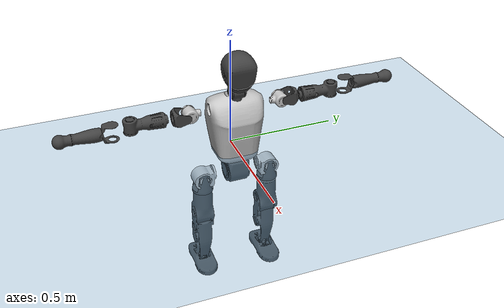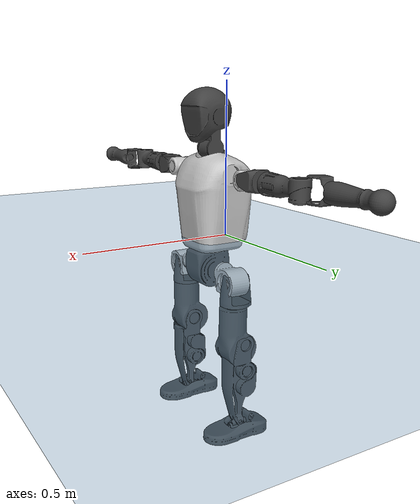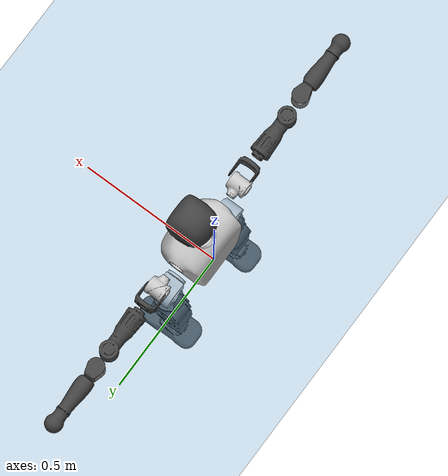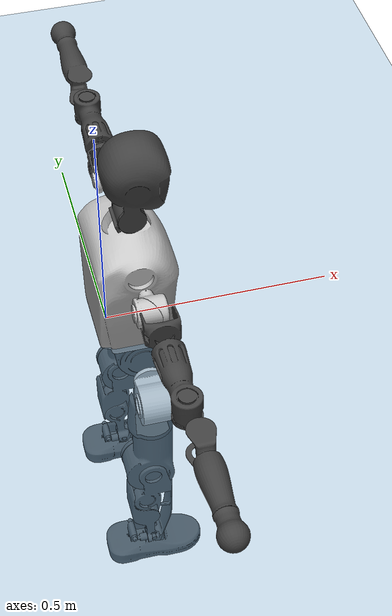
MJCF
<mujoco model="T1">
  <compiler angle="radian" assetdir="assets" balanceinertia="true" inertiafromgeom="false"/>

  <option timestep="0.005" density="1.2" viscosity="2e-05"/>

  <size nkey="1"/>

  <visual>
    <quality shadowsize="8192"/>
    <map shadowclip="0.5"/>
  </visual>

  <default>
    <default class="/">
      <joint armature="0.01" damping="0.01" frictionloss="0.1"/>
      <geom contype="0" conaffinity="0" group="1" solref="-1000 -80"/>
      <site size="0.01 0.005 0.005" group="5"/>
      <general forcelimited="true" biastype="affine" gainprm="25" biasprm="0 -25 -0.6"/>
      <default class="t1">
        <geom rgba="0.25 0.25 0.25 1"/>
        <default class="visual">
          <geom type="mesh" group="2"/>
        </default>
        <default class="collision">
          <geom group="3"/>
        </default>
        <default class="foot">
          <geom size="0.1115 0.05 0.015" type="box" condim="6" group="4" priority="1" solimp="0.015 1 0.015"/>
        </default>
        <default class="reward_collision_sphere">
          <geom group="5" rgba="1 0 0 1"/>
        </default>
      </default>
    </default>
  </default>

  <asset>
    <texture type="skybox" colorspace="auto" name="//unnamed_texture_0" builtin="gradient" rgb1="0.95 0.95 0.95" rgb2="0.95 0.95 0.95" width="100" height="600"/>
    <texture type="2d" colorspace="auto" name="texplane" builtin="checker" rgb1="0.345 0.575 0.748" rgb2="0.345 0.575 0.748" markrgb="1 1 1" width="512" height="512"/>
    <material name="MatPlane" class="/" texture="texplane" texuniform="true" texrepeat="2 2" specular="0.9"/>
    <mesh name="Trunk" class="/" file="Trunk.stl"/>
    <mesh name="H1" class="/" file="H1.stl"/>
    <mesh name="H2" class="/" file="H2.stl"/>
    <mesh name="AL1" class="/" file="AL1.stl"/>
    <mesh name="AL2" class="/" file="AL2.stl"/>
    <mesh name="AL3" class="/" file="AL3.stl"/>
    <mesh name="left_hand_link" class="/" file="left_hand_link.stl"/>
    <mesh name="AR1" class="/" file="AR1.stl"/>
    <mesh name="AR2" class="/" file="AR2.stl"/>
    <mesh name="AR3" class="/" file="AR3.stl"/>
    <mesh name="right_hand_link" class="/" file="right_hand_link.stl"/>
    <mesh name="Waist" class="/" file="Waist.stl"/>
    <mesh name="Hip_Pitch_Left" class="/" file="Hip_Pitch_Left.stl"/>
    <mesh name="Hip_Roll_Left" class="/" file="Hip_Roll_Left.stl"/>
    <mesh name="Hip_Yaw_Left" class="/" file="Hip_Yaw_Left.stl"/>
    <mesh name="Shank_Left" class="/" file="Shank_Left.stl"/>
    <mesh name="Ankle_Cross_Left" class="/" file="Ankle_Cross_Left.stl"/>
    <mesh name="left_foot_link" class="/" file="left_foot_link.stl"/>
    <mesh name="Hip_Pitch_Right" class="/" file="Hip_Pitch_Right.stl"/>
    <mesh name="Hip_Roll_Right" class="/" file="Hip_Roll_Right.stl"/>
    <mesh name="Hip_Yaw_Right" class="/" file="Hip_Yaw_Right.stl"/>
    <mesh name="Shank_Right" class="/" file="Shank_Right.stl"/>
    <mesh name="Ankle_Cross_Right" class="/" file="Ankle_Cross_Right.stl"/>
    <mesh name="right_foot_link" class="/" file="right_foot_link.stl"/>
  </asset>

  <worldbody>
    <geom name="floor" class="/" size="100 100 0.125" type="plane" group="0" material="MatPlane"/>
    <light name="toplight_shadow" class="/" pos="0 0 5" dir="0.0990148 0.0990148 -0.990148" type="directional" ambient="0.04 0.04 0.04" diffuse="0.55 0.55 0.55" specular="0.12 0.12 0.12"/>
    <light name="toplight_fill" class="/" pos="0 0 5" dir="0.0990148 0.0990148 -0.990148" type="directional" castshadow="false" ambient="0.04 0.04 0.04" diffuse="0.3 0.3 0.3" specular="0.08 0.08 0.08"/>
    <body name="trunk" childclass="t1" pos="-0.000592748 0.000686387 0.00028015" quat="1 0.000552884 -0.000562889 -8.42008e-05">
      <inertial pos="0.0529415 -0.00940057 0.0933893" quat="0.999713 -0.00854581 -0.0145315 -0.0170119" mass="19.2926" diaginertia="0.109456 0.61312 0.0454124"/>
      <joint name="//unnamed_joint_0" type="free" armature="0" damping="0" frictionloss="0"/>
      <geom name="//unnamed_geom_1" class="visual" rgba="0.76 0.76 0.76 1" mesh="Trunk"/>
      <geom name="//unnamed_geom_2" class="collision" size="0.0874133 0.116551 0.174827" pos="0.0618941 0 0.114856" type="box"/>
      <geom name="//unnamed_geom_3" class="reward_collision_sphere" size="0.134034" pos="0.0618941 0 0.095713"/>
      <geom name="//unnamed_geom_4" class="reward_collision_sphere" size="0.0174827" pos="0.0618941 0.128166 0"/>
      <geom name="//unnamed_geom_5" class="reward_collision_sphere" size="0.0174827" pos="0.0618941 -0.128166 0"/>
      <geom name="//unnamed_geom_6" class="reward_collision_sphere" size="0.0174827" pos="0.0618941 0.161338 0.172283"/>
      <geom name="//unnamed_geom_7" class="reward_collision_sphere" size="0.0174827" pos="0.0618941 -0.161338 0.172283"/>
      <site name="imu" pos="0.0146496 0.00961358 0.00280455" size="0.0116551"/>
      <camera name="track" pos="0 -3.01566 0" quat="0.707107 0.707107 0 0" mode="trackcom"/>
      <camera name="ego_camera" pos="0.125851 0 0.401995" quat="-0.5 -0.5 0.5 0.5"/>
      <body name="H1" pos="0.0645683 0.0064214 0.225384" quat="1 0.000387159 0.000220003 -0.000150848">
        <inertial pos="-0.00231331 -0.0116038 0.0536094" quat="0.760012 -0.0468062 0.00783814 0.648174" mass="0.729771" diaginertia="0.000296516 0.00180765 0.000117465"/>
        <joint name="AAHead_yaw" pos="0 0 0" axis="0.00484827 -0.00264206 0.999985" range="-1.57345 1.72064" armature="0.0101221" damping="0" frictionloss="0.174345"/>
        <geom name="//unnamed_geom_8" class="visual" mesh="H1"/>
        <body name="H2" pos="0.000239314 0.000437459 0.0653091" quat="0.999999 -0.000958353 -0.000231835 -0.000224527">
          <inertial pos="0.00767575 0.00958109 0.0949098" quat="0.982959 0.114412 -0.0872041 -0.114442" mass="1.01726" diaginertia="0.0023761 0.015238 0.00132897"/>
          <joint name="Head_pitch" pos="0 0 0" axis="0.0034255 -0.999993 -0.00160579" range="-1.26208 0.354222" armature="0.0114959" damping="0" frictionloss="0.139026"/>
          <geom name="//unnamed_geom_9" class="visual" mesh="H2"/>
          <geom name="//unnamed_geom_10" class="collision" size="0.0932408" pos="0.0103157 0 0.105284"/>
          <geom name="//unnamed_geom_11" class="reward_collision_sphere" size="0.104896" pos="0.0206314 0 0.095713"/>
        </body>
      </body>
      <body name="AL1" pos="0.0637486 0.164262 0.212263" quat="0.999993 0.0019192 -0.000119561 -0.00308721">
        <inertial pos="-0.00124974 0.0694829 0.000994881" quat="0.504041 0.478226 -0.536218 0.479283" mass="0.822118" diaginertia="0.00159064 0.00913463 0.000241795"/>
        <joint name="Left_Shoulder_Pitch" pos="0 0 0" axis="-0.00171389 0.999997 -0.00144357" range="-3.28156 1.09331" armature="0.0119959" damping="0.0059804" frictionloss="0.120171"/>
        <geom name="//unnamed_geom_12" class="visual" rgba="0.76 0.76 0.76 1" mesh="AL1"/>
        <body name="AL2" pos="0.000401657 0.0647847 0.00422021" quat="0.999998 0.0011541 0.000230634 0.00182012">
          <inertial pos="-0.00370794 0.0480578 -0.00277536" quat="0.447459 0.525983 -0.489167 0.532764" mass="0.254239" diaginertia="0.000490042 0.00276796 0.000131832"/>
          <joint name="Left_Shoulder_Roll" pos="0 0 0" axis="-0.999983 0.00297357 0.00499451" range="-1.58471 1.7345" armature="0.0125034" damping="0.00496873" frictionloss="0.110121"/>
          <geom name="//unnamed_geom_13" class="visual" mesh="AL2"/>
          <body name="AL3" pos="0.00150431 0.0815774 -0.00226542" quat="1 -0.000141686 -0.00035889 0.000138879">
            <inertial pos="0.00821061 0.13072 0.00311434" quat="0.698949 0.714969 -0.0158402 0.00626282" mass="1.39837" diaginertia="0.0138283 0.0936929 0.000462547"/>
            <joint name="Left_Elbow_Pitch" pos="0 0 0" axis="-0.0094681 -0.999951 0.00297489" range="-2.24556 2.111" armature="0.0103534" damping="0" frictionloss="0.10772"/>
            <geom name="//unnamed_geom_14" class="visual" mesh="AL3"/>
            <geom name="//unnamed_geom_15" class="collision" size="0.0349653 0.0874133" pos="0 0.0753916 0" quat="0.707105 0.707108 0 0" type="cylinder"/>
            <geom name="//unnamed_geom_16" class="reward_collision_sphere" size="0.0419584"/>
            <body name="left_hand_link" pos="-0.00169087 0.21401 0.00876734" quat="1 -0.000398649 -0.000192329 -0.000673758">
              <inertial pos="0.00135213 0.163204 0.00275385" quat="0.708518 0.705692 -0.000722465 0.000106835" mass="0.528774" diaginertia="0.0102583 0.062083 0.000169013"/>
              <joint name="Left_Elbow_Yaw" pos="0 0 0" axis="-8.12457e-05 0.00291834 0.999996" range="-2.28489 -0.0299947" armature="0.0112442" damping="0.0550779" frictionloss="0.0839218"/>
              <geom name="//unnamed_geom_17" class="visual" mesh="left_hand_link"/>
              <geom name="//unnamed_geom_18" class="collision" size="0.0349653 0.101982" pos="0 0.196018 0" quat="0.707105 0.707108 0 0" type="cylinder"/>
              <geom name="//unnamed_geom_19" class="reward_collision_sphere" size="0.0582755"/>
              <geom name="//unnamed_geom_20" class="reward_collision_sphere" size="0.0407929" pos="0 0.165862 0"/>
              <geom name="//unnamed_geom_21" class="reward_collision_sphere" size="0.0407929" pos="0 0.324184 0"/>
            </body>
          </body>
        </body>
      </body>
      <body name="AR1" pos="0.0579805 -0.159903 0.213767" quat="0.999998 -0.00159534 0.00130713 -0.000342947">
        <inertial pos="0.00259376 -0.067133 0.00806282" quat="0.524442 0.462904 -0.513419 0.497073" mass="0.760769" diaginertia="0.00158605 0.00970289 0.000219266"/>
        <joint name="Right_Shoulder_Pitch" pos="0 0 0" axis="-0.0116588 -0.999922 0.00454888" range="-1.23227 3.28249" armature="0.0123883" damping="0.043406" frictionloss="0.166482"/>
        <geom name="//unnamed_geom_22" class="visual" rgba="0.76 0.76 0.76 1" mesh="AR1"/>
        <body name="AR2" pos="0.00811518 -0.0709973 0.00099831" quat="1 0.000114703 0.00029705 -0.000214527">
          <inertial pos="0.00695005 -0.0477956 0.00189947" quat="0.50491 0.46245 -0.512968 0.517755" mass="0.258084" diaginertia="0.000447134 0.00273372 0.000134494"/>
          <joint name="Right_Shoulder_Roll" pos="0 0 0" axis="-0.999758 -0.000917879 -0.021975" range="-1.75399 1.54676" armature="0.0120449" damping="0.0544008" frictionloss="0.119666"/>
          <geom name="//unnamed_geom_23" class="visual" mesh="AR2"/>
          <body name="AR3" pos="-0.00116042 -0.0912843 0.00107831" quat="0.999999 0.000858052 1.01449e-05 0.00149142">
            <inertial pos="0.000108272 -0.130356 -0.000656291" quat="0.713832 0.700114 -0.00452498 0.0162373" mass="1.53986" diaginertia="0.0144476 0.10661 0.000481818"/>
            <joint name="Right_Elbow_Pitch" pos="0 0 0" axis="0.000767839 0.999996 0.00261303" range="-2.3064 2.2655" armature="0.0120182" damping="2.50896e-05" frictionloss="0.123951"/>
            <geom name="//unnamed_geom_24" class="visual" mesh="AR3"/>
            <geom name="//unnamed_geom_25" class="collision" size="0.0349653 0.0874133" pos="0 -0.0753916 0" quat="0.707105 0.707108 0 0" type="cylinder"/>
            <geom name="//unnamed_geom_26" class="reward_collision_sphere" size="0.0419584"/>
            <body name="right_hand_link" pos="0.00531085 -0.226094 -0.00908833" quat="0.999998 -0.00144161 0.000369474 0.00129683">
              <inertial pos="0.0021559 -0.169582 -0.000288389" quat="0.709492 0.704709 -0.00192905 0.00162334" mass="0.498483" diaginertia="0.00932971 0.061949 0.000170635"/>
              <joint name="Right_Elbow_Yaw" pos="0 0 0" axis="-0.00108688 -0.00435864 0.99999" stiffness="0.0032721" range="-0.0789204 2.40766" armature="0.0104947" damping="0.0221536" frictionloss="0.0690141"/>
              <geom name="//unnamed_geom_27" class="visual" mesh="right_hand_link"/>
              <geom name="//unnamed_geom_28" class="collision" size="0.0349653 0.101982" pos="0 -0.196018 0" quat="0.707105 0.707108 0 0" type="cylinder"/>
              <geom name="//unnamed_geom_29" class="reward_collision_sphere" size="0.0582755"/>
              <geom name="//unnamed_geom_30" class="reward_collision_sphere" size="0.0407929" pos="0 -0.165862 0"/>
              <geom name="//unnamed_geom_31" class="reward_collision_sphere" size="0.0407929" pos="0 -0.324184 0"/>
            </body>
          </body>
        </body>
      </body>
      <body name="Waist" pos="0.0698406 -0.00267004 -0.102124" quat="1 0.000188548 5.18145e-05 3.68158e-05">
        <inertial pos="0.0126049 0.000922399 0.00881312" quat="0.982813 0.0080693 -0.184299 0.00686592" mass="4.51229" diaginertia="0.00726251 0.0418375 0.00392904"/>
        <joint name="Waist" pos="0 0 0" axis="0.000504732 -0.000681304 1" range="-1.5136 1.58764" armature="0.00928437" damping="0" frictionloss="0.112856"/>
        <geom name="//unnamed_geom_32" class="visual" mesh="Waist"/>
        <body name="Hip_Pitch_Left" pos="0.00249793 0.156802 0.00663252" quat="1 2.27612e-05 -0.000934464 -0.000200016">
          <inertial pos="0.00103291 -0.0167272 -0.0217497" quat="0.973167 0.229695 0.00771903 0.0112393" mass="1.46726" diaginertia="0.00212445 0.0109108 0.00102342"/>
          <joint name="Left_Hip_Pitch" pos="0 0 0" axis="0.00265362 0.999996 0.000570905" range="-1.79311 1.41165" armature="0.00655514" damping="0" frictionloss="0.113295"/>
          <geom name="//unnamed_geom_33" class="visual" rgba="0.76 0.76 0.76 1" mesh="Hip_Pitch_Left"/>
          <body name="Hip_Roll_Left" pos="-0.00774731 0.00188268 -0.0164356" quat="0.999999 0.00103239 -0.000265979 0.00124627">
            <inertial pos="0.00347377 0.000283093 -0.0533079" quat="0.70468 -0.0319099 0.0289373 0.708217" mass="0.669773" diaginertia="0.00217271 0.0113831 0.000410663"/>
            <joint name="Left_Hip_Roll" pos="0 0 0" axis="-0.999472 -0.0119912 0.030183" range="-1.57006 0.219127" armature="0.00721169" damping="0.00133218" frictionloss="0.133449"/>
            <geom name="//unnamed_geom_34" class="visual" mesh="Hip_Roll_Left"/>
            <geom name="//unnamed_geom_35" class="reward_collision_sphere" size="0.0641031"/>
            <body name="Hip_Yaw_Left" pos="0.00432291 -0.00233233 -0.0879455" quat="1 -4.2958e-05 -0.000459256 -0.000814513">
              <inertial pos="-0.000850372 9.76245e-06 -0.0866447" quat="0.691953 -0.0292559 -0.027294 0.720833" mass="3.34904" diaginertia="0.0286877 0.212959 0.00198703"/>
              <joint name="Left_Hip_Yaw" pos="0 0 0" axis="-0.00219834 0.00561949 -0.999982" range="-0.946602 0.860358" armature="0.0124019" damping="0.0103099" frictionloss="0.113977"/>
              <geom name="//unnamed_geom_36" class="visual" mesh="Hip_Yaw_Left"/>
              <geom name="//unnamed_geom_37" class="collision" size="0.0582755 0.0932408" type="cylinder"/>
              <body name="Shank_Left" pos="-0.0234387 -0.00061936 -0.117872" quat="1 -6.25824e-05 9.58188e-05 -0.000367306">
                <inertial pos="-0.00701415 -0.00612431 -0.126238" quat="0.997567 0.00270666 -0.0231846 0.0656967" mass="3.00085" diaginertia="0.0395356 0.256488 0.0014692"/>
                <joint name="Left_Knee_Pitch" pos="0 0 0" axis="-0.014428 0.999864 -0.00800062" range="-0.0433219 2.37279" armature="0.0118006" damping="0" frictionloss="0.111357"/>
                <geom name="//unnamed_geom_38" class="visual" mesh="Shank_Left"/>
                <geom name="//unnamed_geom_39" class="collision" size="0.0582755 0.0874133" pos="0 0 -0.114856" type="cylinder"/>
                <geom name="//unnamed_geom_40" class="reward_collision_sphere" size="0.0757582"/>
                <body name="Ankle_Cross_Left" pos="0.00253028 -0.000756563 -0.275806" quat="0.999999 -0.00093054 -0.000429004 -0.000458866">
                  <inertial pos="-0.00216148 -0.00492754 -0.0103417" quat="0.447585 0.569612 0.538038 0.430958" mass="0.104851" diaginertia="3.04173e-05 0.000204297 8.82318e-06"/>
                  <joint name="Left_Ankle_Pitch" pos="0 0 0" axis="0.000432745 1 0.000564162" stiffness="0.00287228" range="-1.02882 0.372441" armature="0.0129271" damping="0.00189452" frictionloss="0.116807"/>
                  <geom name="//unnamed_geom_41" class="visual" mesh="Ankle_Cross_Left"/>
                  <body name="left_foot_link" pos="0.000799854 0.00427519 -0.019201" quat="1 0.000609662 -5.64089e-05 -0.000788971">
                    <inertial pos="0.00500369 0.000738537 -0.00260716" quat="-2.35842e-05 0.620784 8.38023e-05 0.783982" mass="1.20645" diaginertia="0.00373409 0.0194088 0.00167391"/>
                    <joint name="Left_Ankle_Roll" pos="0 0 0" axis="-0.999924 -0.000726408 -0.0123019" range="-0.443702 0.437125" armature="0.0112694" damping="0.00226248" frictionloss="0.115295"/>
                    <geom name="//unnamed_geom_42" class="visual" mesh="left_foot_link"/>
                    <geom name="left_foot" class="foot" size="0.114476 0.039487 0.0200215" pos="0.0103157 0 -0.0143569"/>
                    <geom name="//unnamed_geom_44" class="reward_collision_sphere" size="0.0606065" pos="0.0103157 0 -0.0143569"/>
                    <geom name="//unnamed_geom_45" class="reward_collision_sphere" size="0.0349653" pos="0.097999 -0.0346801 -0.0143569"/>
                    <geom name="//unnamed_geom_46" class="reward_collision_sphere" size="0.0349653" pos="-0.0722098 -0.0346801 -0.0143569"/>
                    <site name="left_foot" class="foot" pos="0.0103157 0 -0.0143569" size="0.0116551"/>
                  </body>
                </body>
              </body>
            </body>
          </body>
        </body>
        <body name="Hip_Pitch_Right" pos="-0.00171897 -0.159579 0.000252334" quat="0.999993 -0.00148358 0.00345653 7.04632e-05">
          <inertial pos="0.00638006 0.0114464 -0.024142" quat="0.973579 -0.227889 0.0137957 -0.00447241" mass="1.51906" diaginertia="0.00198488 0.0107156 0.00106472"/>
          <joint name="Right_Hip_Pitch" pos="0 0 0" axis="0.00198041 -0.999979 0.0061131" range="-1.56243 1.98222" armature="0.0141067" damping="0.000350217" frictionloss="0.116479"/>
          <geom name="//unnamed_geom_47" class="visual" rgba="0.76 0.76 0.76 1" mesh="Hip_Pitch_Right"/>
          <body name="Hip_Roll_Right" pos="-0.00833011 0.00237779 -0.0129" quat="0.999999 -1.17459e-05 0.000126293 -0.0011553">
            <inertial pos="0.00161846 -0.000525996 -0.055128" quat="0.721054 0.00100311 0.0319423 0.692141" mass="0.63029" diaginertia="0.00203528 0.0111189 0.000423779"/>
            <joint name="Right_Hip_Roll" pos="0 0 0" axis="-0.999835 -0.00834591 0.0161625" range="-0.393804 1.54674" armature="0.011272" damping="0" frictionloss="0.101951"/>
            <geom name="//unnamed_geom_48" class="visual" mesh="Hip_Roll_Right"/>
            <geom name="//unnamed_geom_49" class="reward_collision_sphere" size="0.0641031"/>
            <body name="Hip_Yaw_Right" pos="0.00223857 -0.000487595 -0.0761573" quat="1 0.000679756 -0.00035016 -0.000546758">
              <inertial pos="-0.00590732 0.00251433 -0.0773348" quat="0.714594 -0.0313141 -0.0350977 0.697956" mass="3.49985" diaginertia="0.0309662 0.190597 0.00217827"/>
              <joint name="Right_Hip_Yaw" pos="0 0 0" axis="0.0396093 -0.0309329 -0.998736" range="-0.981534 1.00731" armature="0.00775241" damping="0.0509585" frictionloss="0.117283"/>
              <geom name="//unnamed_geom_50" class="visual" mesh="Hip_Yaw_Right"/>
              <geom name="//unnamed_geom_51" class="collision" size="0.0582755 0.0932408" type="cylinder"/>
              <body name="Shank_Right" pos="-0.0102007 -0.00221999 -0.134316" quat="0.999999 -0.000879216 -0.000350436 -0.00121565">
                <inertial pos="-0.0062728 7.12953e-05 -0.11183" quat="0.999571 -0.00257581 -0.0193918 -0.0217841" mass="2.48184" diaginertia="0.0359778 0.248377 0.00135678"/>
                <joint name="Right_Knee_Pitch" pos="0 0 0" axis="0.0114126 -0.999577 -0.026741" range="-2.49584 -0.0230768" armature="0.00655477" damping="0" frictionloss="0.120274"/>
                <geom name="//unnamed_geom_52" class="visual" mesh="Shank_Right"/>
                <geom name="//unnamed_geom_53" class="collision" size="0.0582755 0.0874133" pos="0 0 -0.114856" type="cylinder"/>
                <geom name="//unnamed_geom_54" class="reward_collision_sphere" size="0.0757582"/>
                <body name="Ankle_Cross_Right" pos="0.00311791 0.00016328 -0.265656" quat="1 -0.000271927 -0.000639643 5.11715e-05">
                  <inertial pos="-0.00489744 0.0037996 -0.00759953" quat="0.441182 0.550161 0.553742 0.442776" mass="0.111051" diaginertia="3.21434e-05 0.000189056 8.67254e-06"/>
                  <joint name="Right_Ankle_Pitch" pos="0 0 0" axis="-0.0119604 -0.999928 0.000531261" stiffness="0.0321969" range="-0.217451 1.00709" armature="0.0114762" damping="0.0139362" frictionloss="0.11066"/>
                  <geom name="//unnamed_geom_55" class="visual" mesh="Ankle_Cross_Right"/>
                  <body name="right_foot_link" pos="-0.00768937 -0.00136125 -0.00762168" quat="1 -7.21357e-06 0.000206383 1.65613e-05">
                    <inertial pos="0.00884286 -0.000557979 -0.00913006" quat="-0.0011788 0.620895 0.000255816 0.783893" mass="1.10472" diaginertia="0.00321914 0.0202679 0.00184264"/>
                    <joint name="Right_Ankle_Roll" pos="0 0 0" axis="-0.999791 -0.0178983 -0.00987506" range="-0.272313 0.441796" armature="0.0128557" damping="0.0420646" frictionloss="0.12642"/>
                    <geom name="//unnamed_geom_56" class="visual" mesh="right_foot_link"/>
                    <geom name="right_foot" class="foot" size="0.0871865 0.0579835 0.0177467" pos="0.0103157 0 -0.0143569"/>
                    <geom name="//unnamed_geom_58" class="reward_collision_sphere" size="0.0466204"/>
                    <geom name="//unnamed_geom_59" class="reward_collision_sphere" size="0.0349653" pos="0.0103157 0 -0.0143569"/>
                    <geom name="//unnamed_geom_60" class="reward_collision_sphere" size="0.0349653" pos="0.097999 0.0346801 -0.0143569"/>
                    <geom name="//unnamed_geom_61" class="reward_collision_sphere" size="0.0349653" pos="-0.0722098 0.0346801 -0.0143569"/>
                    <site name="right_foot" class="foot" pos="0.0103157 0 -0.0143569" size="0.0116551"/>
                  </body>
                </body>
              </body>
            </body>
          </body>
        </body>
      </body>
    </body>
  </worldbody>

  <contact>
    <pair class="/" geom1="floor" geom2="left_foot" name="//unnamed_contact_0"/>
    <pair class="/" geom1="floor" geom2="right_foot" name="//unnamed_contact_1"/>
  </contact>

  <actuator>
    <general name="AAHead_yaw" class="/" joint="AAHead_yaw" forcerange="-8.28703 8.28703" gainprm="32.7487" biasprm="0 -32.7487 -0.665097"/>
    <general name="Head_pitch" class="/" joint="Head_pitch" forcerange="-8.0076 8.0076" gainprm="32.7487" biasprm="0 -32.7487 -0.665097"/>
    <general name="Left_Shoulder_Pitch" class="/" joint="Left_Shoulder_Pitch" forcerange="-23.2971 23.2971" gainprm="32.7487" biasprm="0 -32.7487 -0.665097"/>
    <general name="Left_Shoulder_Roll" class="/" joint="Left_Shoulder_Roll" forcerange="-20.9191 20.9191" gainprm="32.7487" biasprm="0 -32.7487 -0.665097"/>
    <general name="Left_Elbow_Pitch" class="/" joint="Left_Elbow_Pitch" forcerange="-20.671 20.671" gainprm="32.7487" biasprm="0 -32.7487 -0.665097"/>
    <general name="Left_Elbow_Yaw" class="/" joint="Left_Elbow_Yaw" forcerange="-21.1853 21.1853" gainprm="32.7487" biasprm="0 -32.7487 -0.665097"/>
    <general name="Right_Shoulder_Pitch" class="/" joint="Right_Shoulder_Pitch" forcerange="-21.0825 21.0825" gainprm="32.7487" biasprm="0 -32.7487 -0.665097"/>
    <general name="Right_Shoulder_Roll" class="/" joint="Right_Shoulder_Roll" forcerange="-23.0689 23.0689" gainprm="32.7487" biasprm="0 -32.7487 -0.665097"/>
    <general name="Right_Elbow_Pitch" class="/" joint="Right_Elbow_Pitch" forcerange="-14.7462 14.7462" gainprm="32.7487" biasprm="0 -32.7487 -0.665097"/>
    <general name="Right_Elbow_Yaw" class="/" joint="Right_Elbow_Yaw" forcerange="-20.6077 20.6077" gainprm="32.7487" biasprm="0 -32.7487 -0.665097"/>
    <general name="Waist" class="/" joint="Waist" forcerange="-34.3676 34.3676" gainprm="32.7487" biasprm="0 -32.7487 -0.665097"/>
    <general name="Left_Hip_Pitch" class="/" joint="Left_Hip_Pitch" forcerange="-55.784 55.784" gainprm="32.7487" biasprm="0 -32.7487 -0.665097"/>
    <general name="Left_Hip_Roll" class="/" joint="Left_Hip_Roll" forcerange="-27.9865 27.9865" gainprm="32.7487" biasprm="0 -32.7487 -0.665097"/>
    <general name="Left_Hip_Yaw" class="/" joint="Left_Hip_Yaw" forcerange="-42.8575 42.8575" gainprm="32.7487" biasprm="0 -32.7487 -0.665097"/>
    <general name="Left_Knee_Pitch" class="/" joint="Left_Knee_Pitch" forcerange="-74.0206 74.0206" gainprm="32.7487" biasprm="0 -32.7487 -0.665097"/>
    <general name="Left_Ankle_Pitch" class="/" joint="Left_Ankle_Pitch" forcerange="-22.4954 22.4954" gainprm="32.7487" biasprm="0 -32.7487 -0.665097"/>
    <general name="Left_Ankle_Roll" class="/" joint="Left_Ankle_Roll" forcerange="-12.9697 12.9697" gainprm="32.7487" biasprm="0 -32.7487 -0.665097"/>
    <general name="Right_Hip_Pitch" class="/" joint="Right_Hip_Pitch" forcerange="-52.4413 52.4413" gainprm="32.7487" biasprm="0 -32.7487 -0.665097"/>
    <general name="Right_Hip_Roll" class="/" joint="Right_Hip_Roll" forcerange="-36.5594 36.5594" gainprm="32.7487" biasprm="0 -32.7487 -0.665097"/>
    <general name="Right_Hip_Yaw" class="/" joint="Right_Hip_Yaw" forcerange="-23.8975 23.8975" gainprm="32.7487" biasprm="0 -32.7487 -0.665097"/>
    <general name="Right_Knee_Pitch" class="/" joint="Right_Knee_Pitch" forcerange="-69.2225 69.2225" gainprm="32.7487" biasprm="0 -32.7487 -0.665097"/>
    <general name="Right_Ankle_Pitch" class="/" joint="Right_Ankle_Pitch" forcerange="-22.2184 22.2184" gainprm="32.7487" biasprm="0 -32.7487 -0.665097"/>
    <general name="Right_Ankle_Roll" class="/" joint="Right_Ankle_Roll" forcerange="-19.5844 19.5844" gainprm="32.7487" biasprm="0 -32.7487 -0.665097"/>
  </actuator>

  <sensor>
    <gyro site="imu" name="imu_angular_velocity"/>
    <velocimeter site="imu" name="imu_linear_velocity"/>
    <framelinvel objtype="site" objname="left_foot" name="left_foot_global_linear_velocity"/>
    <framelinvel objtype="site" objname="right_foot" name="right_foot_global_linear_velocity"/>
  </sensor>

  <keyframe>
    <key name="home" qpos="0 0 0.6385 1 0 0 0 0 0 0 1.4 0 -0.4 0 -1.4 0 0.4 0 -0.4 0 0 0.8 -0.4 0 0.4 0 0 -0.8 0.4 0"/>
  </keyframe>
</mujoco>
